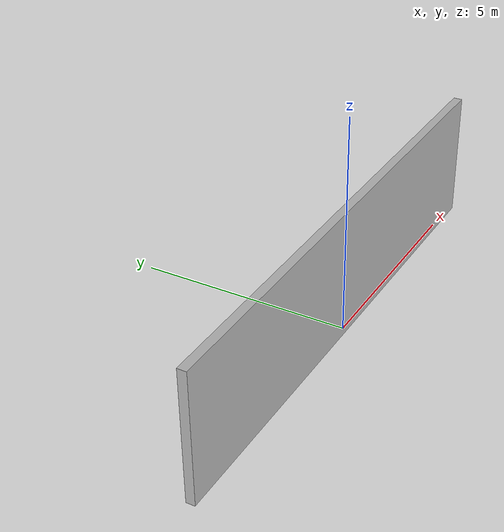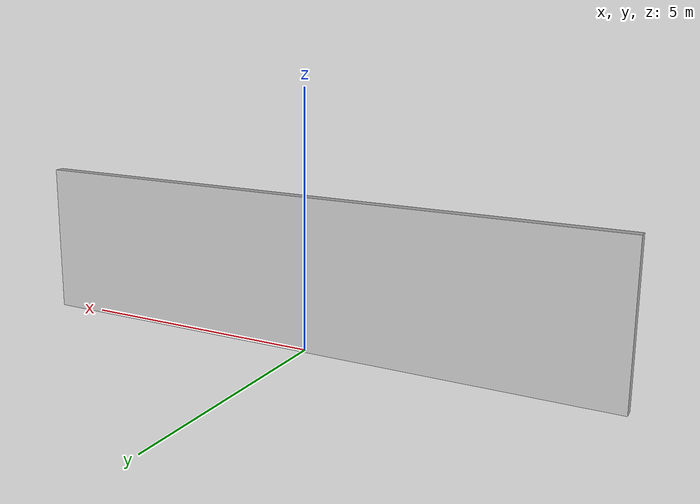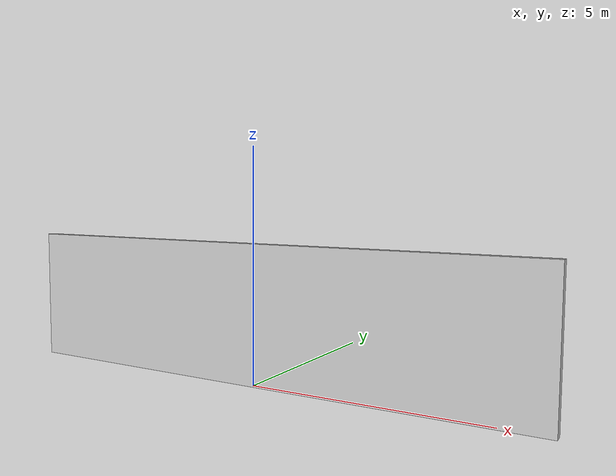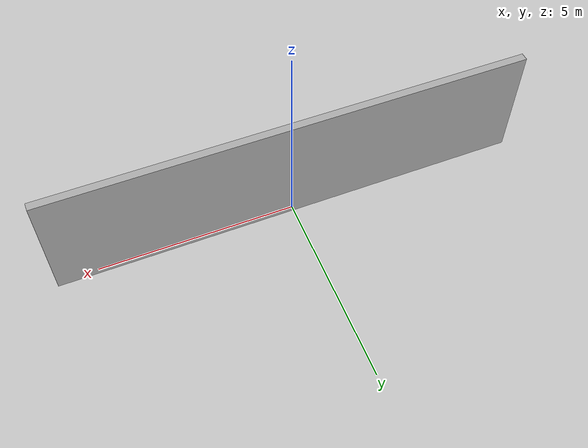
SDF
<?xml version="1.0" ?>
<sdf version="1.5">
  <model name="wall2">
    <static>true</static>
    <link name="chassis">
      <pose>0 0 1.5 0 0 0</pose>
      <collision name="collision">
        <geometry>
          <box>
            <size>12.0 0.2 3.0</size>
          </box>
        </geometry>
      </collision>
      <visual name="visual">
        <geometry>
          <mesh>
            <uri>model://wall2/meshes/simple_box.dae</uri>
            <scale>12.0 0.2 3.0</scale>
          </mesh>
        </geometry>
        <material>
          <script>
            <uri>model://wall2/materials/scripts</uri>
            <uri>model://wall2/materials/textures</uri>
            <name>wall2/Diffuse</name>
          </script>
        </material>
      </visual>
    </link>
  </model>
</sdf>
